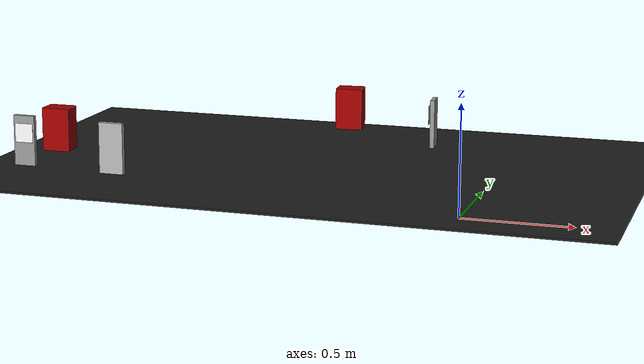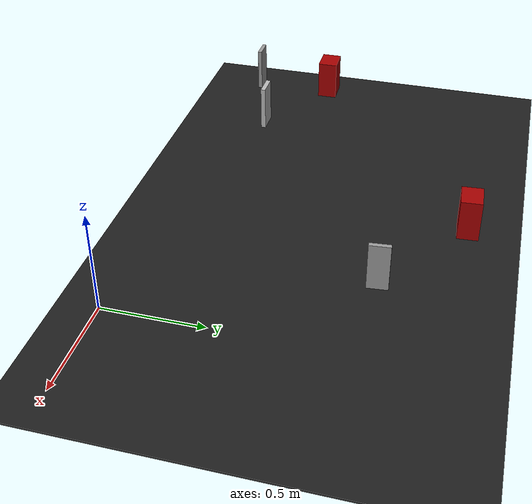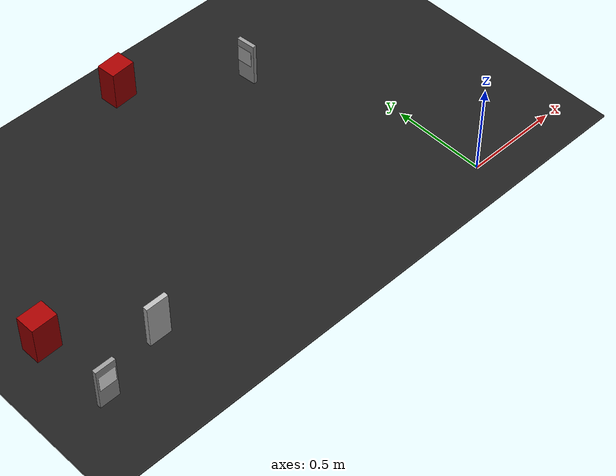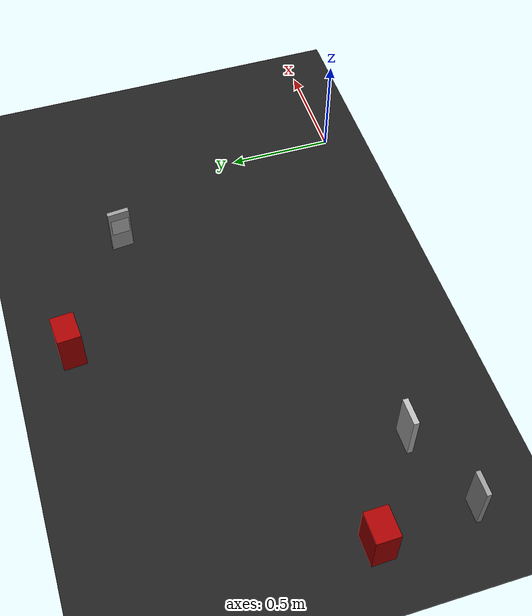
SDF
<sdf version="1.7">
 <world name="default">
  <model name="ground_plane">
   <pose>-0.598773 -0.01473 0 0 -0 0</pose>
   <static>1</static>
   <link name="link">
    <collision name="collision"><geometry><box><size>10 10 0.01</size></box></geometry></collision>
    <visual name="visual">
     <geometry><box><size>10 10 0.01</size></box></geometry>
     <material>
      <script><uri>file://media/materials/scripts/gazebo.material</uri><name>Gazebo/FlatBlack</name></script>
     </material>
    </visual>
   </link>
  </model>
  <model name="traffic_right_clone">
   <link name="box">
    <pose>1.08 -0.728 0.125 0 0 -1.57</pose>
    <inertial>
     <mass>1</mass>
     <inertia><ixx>1</ixx><ixy>0</ixy><ixz>0</ixz><iyy>1</iyy><iyz>0</iyz><izz>1</izz></inertia>
    </inertial>
    <visual name="visual">
     <geometry><box><size>0.12 0.025 0.25</size></box></geometry>
     <material>
      <script>
       <uri>model://turtlebot3_autorace_2020/traffic_right/materials/scripts</uri>
       <uri>model://turtlebot3_autorace_2020/traffic_right/materials/textures</uri>
       <name>traffic_right</name>
      </script>
      <shader type="pixel"><normal_map>__default__</normal_map></shader>
     </material>
    </visual>
    <collision name="collision">
     <geometry><box><size>0.12 0.025 0.25</size></box></geometry>
     <surface>
      <friction>
       <ode><mu>1</mu><mu2>1</mu2><fdir1>0 0 0</fdir1><slip1>0</slip1><slip2>0</slip2></ode>
       <torsional>
        <coefficient>1</coefficient>
        <patch_radius>0</patch_radius>
        <surface_radius>0</surface_radius>
        <use_patch_radius>1</use_patch_radius>
        <ode><slip>0</slip></ode>
       </torsional>
      </friction>
      <bounce><restitution_coefficient>0</restitution_coefficient><threshold>1e+06</threshold></bounce>
      <contact>
       <collide_without_contact>0</collide_without_contact>
       <collide_without_contact_bitmask>1</collide_without_contact_bitmask>
       <collide_bitmask>1</collide_bitmask>
       <ode>
        <soft_cfm>0</soft_cfm>
        <soft_erp>0.2</soft_erp>
        <kp>1e+13</kp>
        <kd>1</kd>
        <max_vel>0.01</max_vel>
        <min_depth>0</min_depth>
       </ode>
       <bullet>
        <split_impulse>1</split_impulse>
        <split_impulse_penetration_threshold>-0.01</split_impulse_penetration_threshold>
        <soft_cfm>0</soft_cfm>
        <soft_erp>0.2</soft_erp>
        <kp>1e+13</kp>
        <kd>1</kd>
       </bullet>
      </contact>
     </surface>
    </collision>
   </link>
   <static>1</static>
   <pose>-1.01515 1.35794 0 0 0 -1.57</pose>
  </model>
  <model name="unit_box_clone_0">
   <link name="link">
    <inertial>
     <mass>1</mass>
     <inertia>
      <ixx>0.166667</ixx>
      <ixy>0</ixy>
      <ixz>0</ixz>
      <iyy>0.166667</iyy>
      <iyz>0</iyz>
      <izz>0.166667</izz>
     </inertia>
    </inertial>
    <visual name="visual">
     <geometry><box><size>0.021101 0.101499 0.239634</size></box></geometry>
     <material>
      <script><name>Gazebo/Grey</name><uri>file://media/materials/scripts/gazebo.material</uri></script>
      <shader type="pixel"/>
     </material>
    </visual>
    <collision name="collision">
     <geometry><box><size>0.021101 0.101499 0.239634</size></box></geometry>
     <surface>
      <friction>
       <ode><mu>1</mu><mu2>1</mu2><fdir1>0 0 0</fdir1><slip1>0</slip1><slip2>0</slip2></ode>
       <torsional>
        <coefficient>1</coefficient>
        <patch_radius>0</patch_radius>
        <surface_radius>0</surface_radius>
        <use_patch_radius>1</use_patch_radius>
        <ode><slip>0</slip></ode>
       </torsional>
      </friction>
      <bounce><restitution_coefficient>0</restitution_coefficient><threshold>1e+06</threshold></bounce>
      <contact>
       <collide_without_contact>0</collide_without_contact>
       <collide_without_contact_bitmask>1</collide_without_contact_bitmask>
       <collide_bitmask>1</collide_bitmask>
       <ode>
        <soft_cfm>0</soft_cfm>
        <soft_erp>0.2</soft_erp>
        <kp>1e+13</kp>
        <kd>1</kd>
        <max_vel>0.01</max_vel>
        <min_depth>0</min_depth>
       </ode>
       <bullet>
        <split_impulse>1</split_impulse>
        <split_impulse_penetration_threshold>-0.01</split_impulse_penetration_threshold>
        <soft_cfm>0</soft_cfm>
        <soft_erp>0.2</soft_erp>
        <kp>1e+13</kp>
        <kd>1</kd>
       </bullet>
      </contact>
     </surface>
    </collision>
   </link>
   <static>1</static>
   <pose>-0.395086 1.16853 0.165231 0 -0 0.084537</pose>
  </model>
  <model name="unit_box_0">
   <link name="link">
    <inertial>
     <mass>1</mass>
     <inertia>
      <ixx>0.166667</ixx>
      <ixy>0</ixy>
      <ixz>0</ixz>
      <iyy>0.166667</iyy>
      <iyz>0</iyz>
      <izz>0.166667</izz>
     </inertia>
    </inertial>
    <visual name="visual">
     <geometry><box><size>0.134792 0.104857 0.213276</size></box></geometry>
     <material>
      <script><name>Gazebo/Grey</name><uri>file://media/materials/scripts/gazebo.material</uri></script>
      <shader type="pixel"><normal_map>__default__</normal_map></shader>
      <diffuse>0.643 0 0 1</diffuse>
      <ambient>0.3 0.3 0.3 1</ambient>
      <specular>0.01 0.01 0.01 1</specular>
      <emissive>0 0 0 1</emissive>
     </material>
    </visual>
    <collision name="collision">
     <geometry><box><size>0.134792 0.104857 0.213276</size></box></geometry>
     <surface>
      <friction>
       <ode><mu>1</mu><mu2>1</mu2><fdir1>0 0 0</fdir1><slip1>0</slip1><slip2>0</slip2></ode>
       <torsional>
        <coefficient>1</coefficient>
        <patch_radius>0</patch_radius>
        <surface_radius>0</surface_radius>
        <use_patch_radius>1</use_patch_radius>
        <ode><slip>0</slip></ode>
       </torsional>
      </friction>
      <bounce><restitution_coefficient>0</restitution_coefficient><threshold>1e+06</threshold></bounce>
      <contact>
       <collide_without_contact>0</collide_without_contact>
       <collide_without_contact_bitmask>1</collide_without_contact_bitmask>
       <collide_bitmask>1</collide_bitmask>
       <ode>
        <soft_cfm>0</soft_cfm>
        <soft_erp>0.2</soft_erp>
        <kp>1e+13</kp>
        <kd>1</kd>
        <max_vel>0.01</max_vel>
        <min_depth>0</min_depth>
       </ode>
       <bullet>
        <split_impulse>1</split_impulse>
        <split_impulse_penetration_threshold>-0.01</split_impulse_penetration_threshold>
        <soft_cfm>0</soft_cfm>
        <soft_erp>0.2</soft_erp>
        <kp>1e+13</kp>
        <kd>1</kd>
       </bullet>
      </contact>
     </surface>
    </collision>
   </link>
   <static>1</static>
   <pose>-0.928508 1.52025 0.142591 0 -0 0.069397</pose>
  </model>
  <model name="marker4">
   <link name="marker">
    <inertial>
     <mass>0.1</mass>
     <inertia><ixx>0</ixx><ixy>0</ixy><ixz>0</ixz><iyy>0</iyy><iyz>0</iyz><izz>0</izz></inertia>
    </inertial>
    <self_collide>1</self_collide>
    <visual name="visual">
     <geometry><box><size>0.001 0.093286 0.084349</size></box></geometry>
     <material>
      <script>
       <uri>model://marker60_8cm/material/scripts</uri>
       <uri>model://marker60_8cm/material/textures</uri>
       <name>Aruco/marker60_8cm</name>
      </script>
      <shader type="pixel"/>
     </material>
    </visual>
    <collision name="collision">
     <geometry><box><size>0.001 0.093286 0.084349</size></box></geometry>
     <surface>
      <friction>
       <ode><mu>1</mu><mu2>1</mu2><fdir1>0 0 0</fdir1><slip1>0</slip1><slip2>0</slip2></ode>
       <torsional>
        <coefficient>1</coefficient>
        <patch_radius>0</patch_radius>
        <surface_radius>0</surface_radius>
        <use_patch_radius>1</use_patch_radius>
        <ode><slip>0</slip></ode>
       </torsional>
      </friction>
      <bounce><restitution_coefficient>0</restitution_coefficient><threshold>1e+06</threshold></bounce>
      <contact>
       <collide_without_contact>0</collide_without_contact>
       <collide_without_contact_bitmask>1</collide_without_contact_bitmask>
       <collide_bitmask>1</collide_bitmask>
       <ode>
        <soft_cfm>0</soft_cfm>
        <soft_erp>0.2</soft_erp>
        <kp>1e+13</kp>
        <kd>1</kd>
        <max_vel>0.01</max_vel>
        <min_depth>0</min_depth>
       </ode>
       <bullet>
        <split_impulse>1</split_impulse>
        <split_impulse_penetration_threshold>-0.01</split_impulse_penetration_threshold>
        <soft_cfm>0</soft_cfm>
        <soft_erp>0.2</soft_erp>
        <kp>1e+13</kp>
        <kd>1</kd>
       </bullet>
      </contact>
     </surface>
    </collision>
   </link>
   <static>1</static>
   <pose>-0.414401 1.16648 0.205476 -1.57 -0 0.084537</pose>
  </model>
  <model name="marker3">
   <link name="marker">
    <inertial>
     <mass>0.1</mass>
     <inertia><ixx>0</ixx><ixy>0</ixy><ixz>0</ixz><iyy>0</iyy><iyz>0</iyz><izz>0</izz></inertia>
    </inertial>
    <self_collide>1</self_collide>
    <visual name="visual">
     <geometry><box><size>0.001 0.09 0.09</size></box></geometry>
     <material>
      <script>
       <uri>model://marker100_8cm/material/scripts</uri>
       <uri>model://marker100_8cm/material/textures</uri>
       <name>Aruco/marker100_8cm</name>
      </script>
      <shader type="pixel"><normal_map>__default__</normal_map></shader>
      <ambient>1 1 1 1</ambient>
      <diffuse>1 1 1 1</diffuse>
      <specular>0 0 0 1</specular>
      <emissive>0 0 0 1</emissive>
     </material>
    </visual>
    <collision name="collision">
     <geometry><box><size>0.001 0.089088 0.084916</size></box></geometry>
     <surface>
      <friction>
       <ode><mu>1</mu><mu2>1</mu2><fdir1>0 0 0</fdir1><slip1>0</slip1><slip2>0</slip2></ode>
       <torsional>
        <coefficient>1</coefficient>
        <patch_radius>0</patch_radius>
        <surface_radius>0</surface_radius>
        <use_patch_radius>1</use_patch_radius>
        <ode><slip>0</slip></ode>
       </torsional>
      </friction>
      <bounce><restitution_coefficient>0</restitution_coefficient><threshold>1e+06</threshold></bounce>
      <contact>
       <collide_without_contact>0</collide_without_contact>
       <collide_without_contact_bitmask>1</collide_without_contact_bitmask>
       <collide_bitmask>1</collide_bitmask>
       <ode>
        <soft_cfm>0</soft_cfm>
        <soft_erp>0.2</soft_erp>
        <kp>1e+13</kp>
        <kd>1</kd>
        <max_vel>0.01</max_vel>
        <min_depth>0</min_depth>
       </ode>
       <bullet>
        <split_impulse>1</split_impulse>
        <split_impulse_penetration_threshold>-0.01</split_impulse_penetration_threshold>
        <soft_cfm>0</soft_cfm>
        <soft_erp>0.2</soft_erp>
        <kp>1e+13</kp>
        <kd>1</kd>
       </bullet>
      </contact>
     </surface>
    </collision>
   </link>
   <static>1</static>
   <pose>-2.12745 0.133907 0.20394 -1.56613 0 -1.57</pose>
  </model>
  <model name="unit_box_clone_clone">
   <link name="link">
    <inertial>
     <mass>1</mass>
     <inertia>
      <ixx>0.166667</ixx>
      <ixy>0</ixy>
      <ixz>0</ixz>
      <iyy>0.166667</iyy>
      <iyz>0</iyz>
      <izz>0.166667</izz>
     </inertia>
    </inertial>
    <visual name="visual">
     <geometry><box><size>0.021101 0.105496 0.239634</size></box></geometry>
     <material>
      <script><name>Gazebo/Grey</name><uri>file://media/materials/scripts/gazebo.material</uri></script>
      <shader type="pixel"><normal_map>__default__</normal_map></shader>
      <diffuse>1 1 1 1</diffuse>
      <ambient>0.3 0.3 0.3 1</ambient>
      <specular>0.01 0.01 0.01 1</specular>
      <emissive>0 0 0 1</emissive>
     </material>
    </visual>
    <collision name="collision">
     <geometry><box><size>0.021101 0.105496 0.239634</size></box></geometry>
     <surface>
      <friction>
       <ode><mu>1</mu><mu2>1</mu2><fdir1>0 0 0</fdir1><slip1>0</slip1><slip2>0</slip2></ode>
       <torsional>
        <coefficient>1</coefficient>
        <patch_radius>0</patch_radius>
        <surface_radius>0</surface_radius>
        <use_patch_radius>1</use_patch_radius>
        <ode><slip>0</slip></ode>
       </torsional>
      </friction>
      <bounce><restitution_coefficient>0</restitution_coefficient><threshold>1e+06</threshold></bounce>
      <contact>
       <collide_without_contact>0</collide_without_contact>
       <collide_without_contact_bitmask>1</collide_without_contact_bitmask>
       <collide_bitmask>1</collide_bitmask>
       <ode>
        <soft_cfm>0</soft_cfm>
        <soft_erp>0.2</soft_erp>
        <kp>1e+13</kp>
        <kd>1</kd>
        <max_vel>0.01</max_vel>
        <min_depth>0</min_depth>
       </ode>
       <bullet>
        <split_impulse>1</split_impulse>
        <split_impulse_penetration_threshold>-0.01</split_impulse_penetration_threshold>
        <soft_cfm>0</soft_cfm>
        <soft_erp>0.2</soft_erp>
        <kp>1e+13</kp>
        <kd>1</kd>
       </bullet>
      </contact>
     </surface>
    </collision>
   </link>
   <static>1</static>
   <pose>-2.12749 0.147459 0.166906 0 -0 1.57</pose>
  </model>
  <model name="unit_box_0_clone_clone">
   <link name="link">
    <inertial>
     <mass>1</mass>
     <inertia>
      <ixx>0.166667</ixx>
      <ixy>0</ixy>
      <ixz>0</ixz>
      <iyy>0.166667</iyy>
      <iyz>0</iyz>
      <izz>0.166667</izz>
     </inertia>
    </inertial>
    <visual name="visual">
     <geometry><box><size>0.134792 0.104857 0.213276</size></box></geometry>
     <material>
      <script><name>Gazebo/Grey</name><uri>file://media/materials/scripts/gazebo.material</uri></script>
      <shader type="pixel"><normal_map>__default__</normal_map></shader>
      <diffuse>0.643 0 0 1</diffuse>
      <ambient>0.3 0.3 0.3 1</ambient>
      <specular>0.01 0.01 0.01 1</specular>
      <emissive>0 0 0 1</emissive>
     </material>
    </visual>
    <collision name="collision">
     <geometry><box><size>0.134792 0.104857 0.213276</size></box></geometry>
     <surface>
      <friction>
       <ode><mu>1</mu><mu2>1</mu2><fdir1>0 0 0</fdir1><slip1>0</slip1><slip2>0</slip2></ode>
       <torsional>
        <coefficient>1</coefficient>
        <patch_radius>0</patch_radius>
        <surface_radius>0</surface_radius>
        <use_patch_radius>1</use_patch_radius>
        <ode><slip>0</slip></ode>
       </torsional>
      </friction>
      <bounce><restitution_coefficient>0</restitution_coefficient><threshold>1e+06</threshold></bounce>
      <contact>
       <collide_without_contact>0</collide_without_contact>
       <collide_without_contact_bitmask>1</collide_without_contact_bitmask>
       <collide_bitmask>1</collide_bitmask>
       <ode>
        <soft_cfm>0</soft_cfm>
        <soft_erp>0.2</soft_erp>
        <kp>1e+13</kp>
        <kd>1</kd>
        <max_vel>0.01</max_vel>
        <min_depth>0</min_depth>
       </ode>
       <bullet>
        <split_impulse>1</split_impulse>
        <split_impulse_penetration_threshold>-0.01</split_impulse_penetration_threshold>
        <soft_cfm>0</soft_cfm>
        <soft_erp>0.2</soft_erp>
        <kp>1e+13</kp>
        <kd>1</kd>
       </bullet>
      </contact>
     </surface>
    </collision>
   </link>
   <static>1</static>
   <pose>-2.15242 0.56389 0.142591 0 -0 0.01621</pose>
  </model>
 </world>
</sdf>
